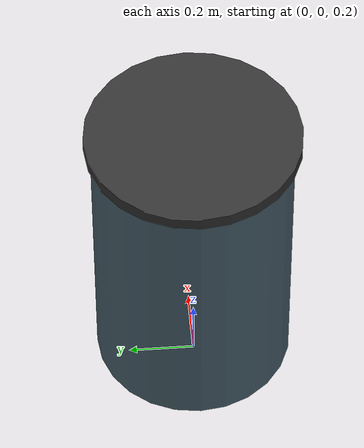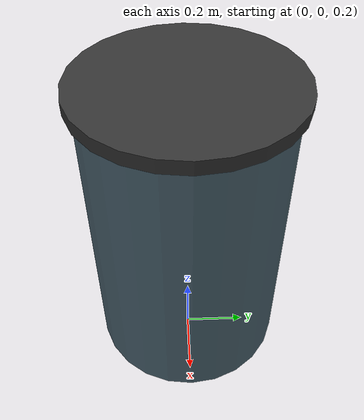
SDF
<?xml version="1.0"?>
<sdf version="1.10">
  <model name="first_2015_trash_can">
    <static>false</static>
    <link name="trash_can">
      <pose>0 0 0.72 0 0 0</pose>
      <collision name="collision">
        <geometry>
          <cylinder>
            <radius>0.3</radius>
            <length>0.9</length>
          </cylinder>
        </geometry>
      </collision>
      <visual name="body">
        <geometry>
          <cylinder>
            <radius>0.3</radius>
            <length>0.9</length>
          </cylinder>
        </geometry>
        <material>
          <ambient>0.2 0.2 0.2 1</ambient>
          <diffuse>0.3 0.4 0.45 1</diffuse>
          <specular>0.1 0.1 0.1 1</specular>
        </material>
      </visual>
      <visual name="lid">
        <pose>0 0 0.48 0 0 0</pose>
        <geometry>
          <cylinder>
            <radius>0.32</radius>
            <length>0.04</length>
          </cylinder>
        </geometry>
        <material>
          <ambient>0.15 0.15 0.15 1</ambient>
          <diffuse>0.2 0.2 0.2 1</diffuse>
        </material>
      </visual>
      <inertial>
        <mass>8.0</mass>
        <inertia>
          <ixx>0.35</ixx>
          <iyy>0.35</iyy>
          <izz>0.20</izz>
          <ixy>0</ixy>
          <ixz>0</ixz>
          <iyz>0</iyz>
        </inertia>
      </inertial>
    </link>
  </model>
</sdf>
